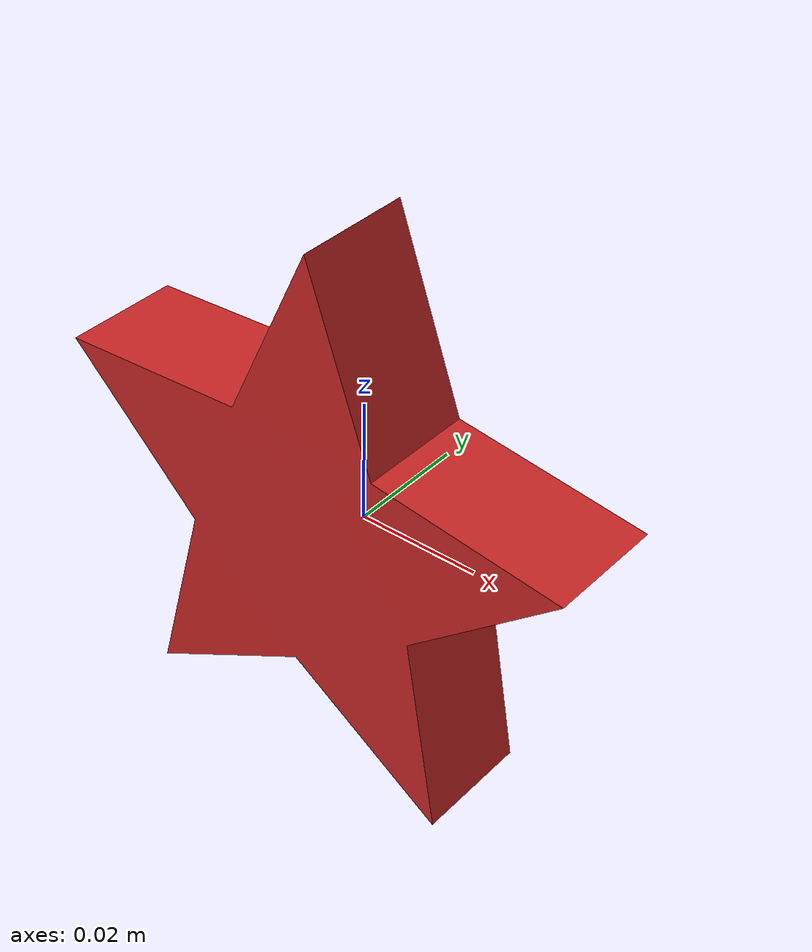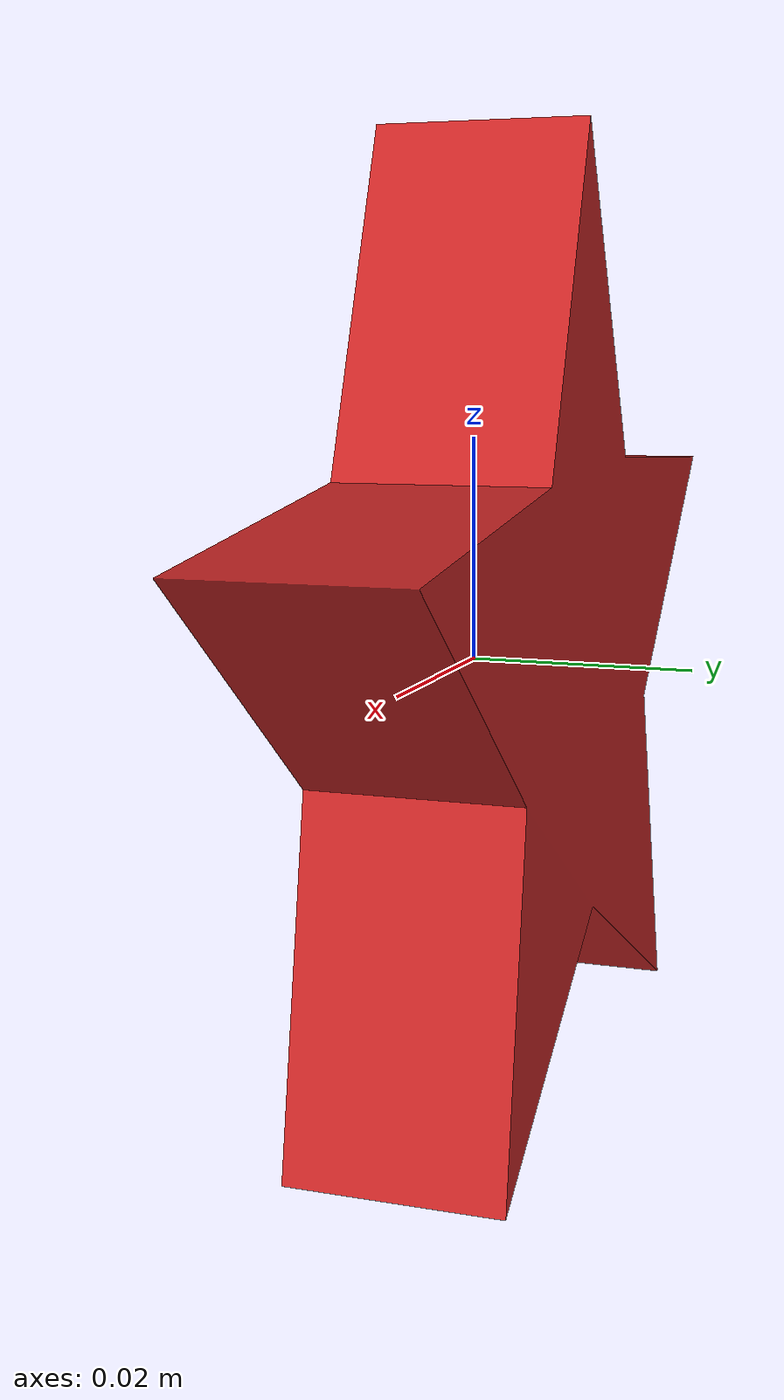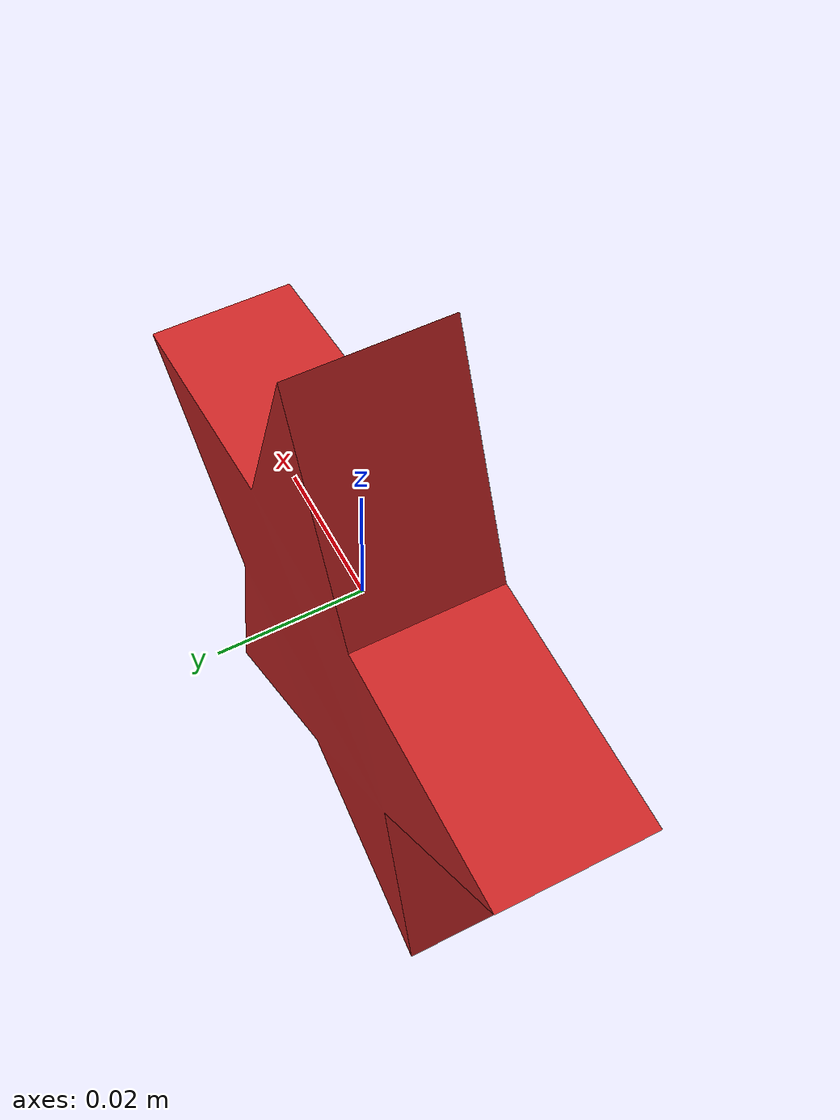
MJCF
<mujoco model="star">
  <default>
    <default class="visual">
      <geom group="2" type="mesh" contype="0" conaffinity="0"/>
    </default>
    <default class="collision">
      <geom group="3" type="mesh"/>
    </default>
  </default>
  <asset>
    <texture type="2d" name="texture" file="texture.png"/>
    <material name="Red.002" texture="texture" specular="0.0" shininess="0.25"/>
    <mesh file="star.obj"/>
  </asset>
  <worldbody>
    <body name="star">
      <freejoint/>
      <geom material="Red.002" mesh="star" class="visual"/>
      <geom mesh="star" class="collision"/>
    </body>
  </worldbody>
</mujoco>
